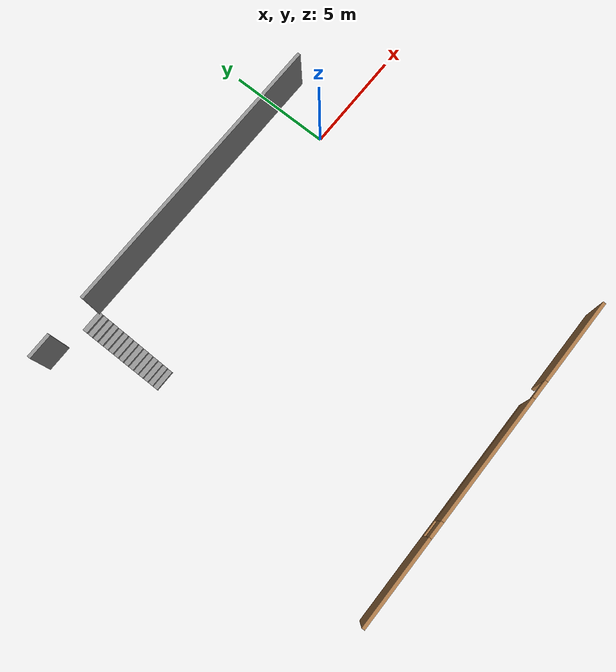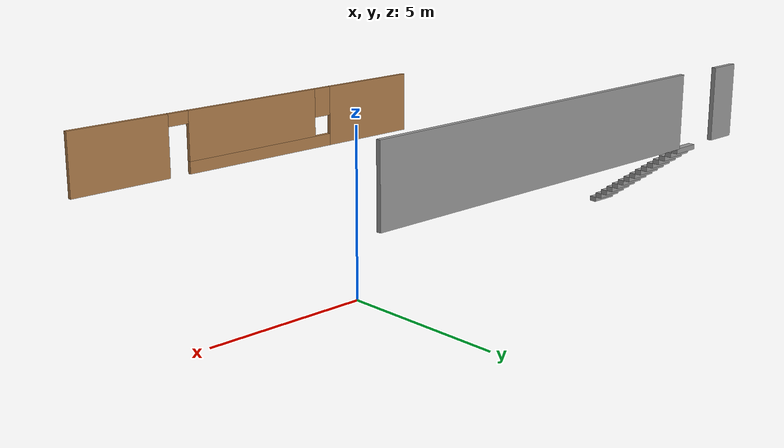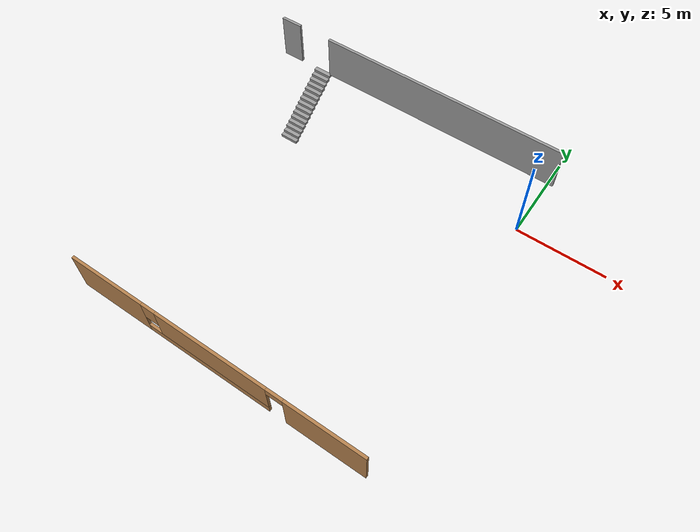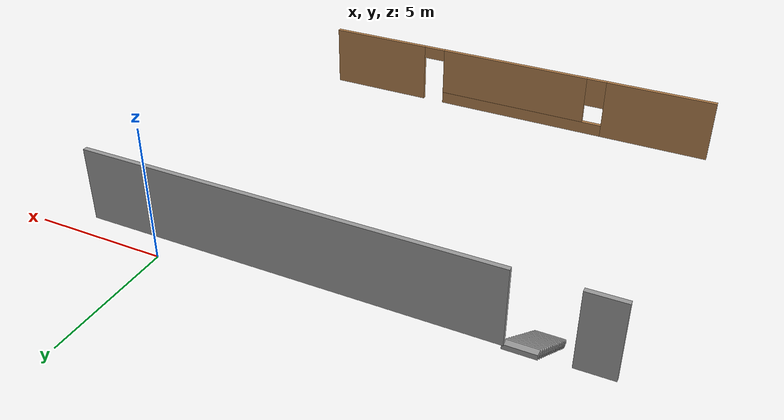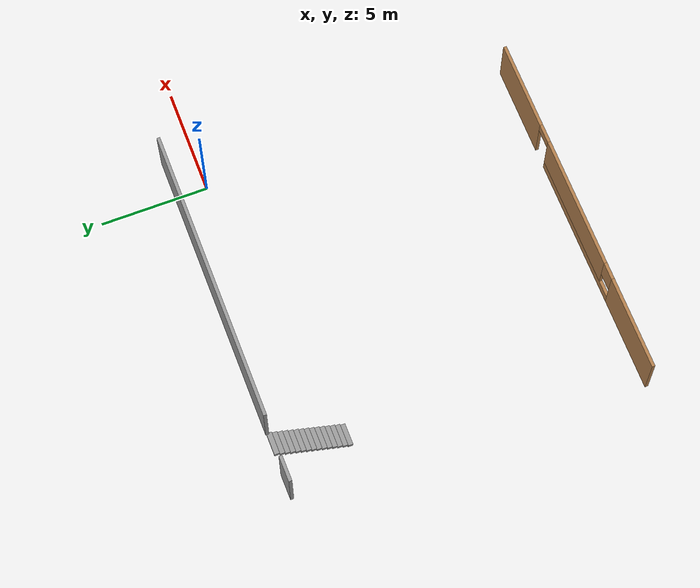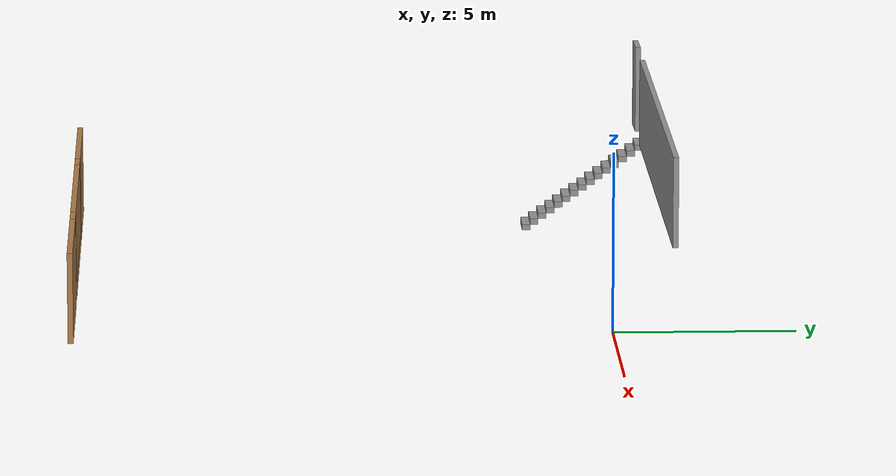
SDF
<sdf version="1.7">
 <model name="Floor_Plan_RS1">
  <pose>-35.0156 -19.3457 0 0 -0 0</pose>
  <link name="Stairs_2">
   <visual name="Stairs_2_Visual_0">
    <pose>21.7763 17.6235 0.083333 0 -0 -3.14159</pose>
    <geometry><box><size>1 0.233333 0.166667</size></box></geometry>
    <material>
     <script><uri>file://media/materials/scripts/gazebo.material</uri><name>Gazebo/Grey</name></script>
     <ambient>1 1 1 1</ambient>
    </material>
    <meta><layer>0</layer></meta>
   </visual>
   <collision name="Stairs_2_Collision_0">
    <geometry><box><size>1 0.233333 0.166667</size></box></geometry>
    <pose>21.7763 17.6235 0.083333 0 -0 -3.14159</pose>
   </collision>
   <visual name="Stairs_2_Visual_1">
    <pose>21.7763 17.8569 0.25 0 -0 -3.14159</pose>
    <geometry><box><size>1 0.233333 0.166667</size></box></geometry>
    <material>
     <script><uri>file://media/materials/scripts/gazebo.material</uri><name>Gazebo/Grey</name></script>
     <ambient>1 1 1 1</ambient>
    </material>
    <meta><layer>0</layer></meta>
   </visual>
   <collision name="Stairs_2_Collision_1">
    <geometry><box><size>1 0.233333 0.166667</size></box></geometry>
    <pose>21.7763 17.8569 0.25 0 -0 -3.14159</pose>
   </collision>
   <visual name="Stairs_2_Visual_2">
    <pose>21.7763 18.0902 0.416667 0 -0 -3.14159</pose>
    <geometry><box><size>1 0.233333 0.166667</size></box></geometry>
    <material>
     <script><uri>file://media/materials/scripts/gazebo.material</uri><name>Gazebo/Grey</name></script>
     <ambient>1 1 1 1</ambient>
    </material>
    <meta><layer>0</layer></meta>
   </visual>
   <collision name="Stairs_2_Collision_2">
    <geometry><box><size>1 0.233333 0.166667</size></box></geometry>
    <pose>21.7763 18.0902 0.416667 0 -0 -3.14159</pose>
   </collision>
   <visual name="Stairs_2_Visual_3">
    <pose>21.7763 18.3235 0.583333 0 -0 -3.14159</pose>
    <geometry><box><size>1 0.233333 0.166667</size></box></geometry>
    <material>
     <script><uri>file://media/materials/scripts/gazebo.material</uri><name>Gazebo/Grey</name></script>
     <ambient>1 1 1 1</ambient>
    </material>
    <meta><layer>0</layer></meta>
   </visual>
   <collision name="Stairs_2_Collision_3">
    <geometry><box><size>1 0.233333 0.166667</size></box></geometry>
    <pose>21.7763 18.3235 0.583333 0 -0 -3.14159</pose>
   </collision>
   <visual name="Stairs_2_Visual_4">
    <pose>21.7763 18.5569 0.75 0 -0 -3.14159</pose>
    <geometry><box><size>1 0.233333 0.166667</size></box></geometry>
    <material>
     <script><uri>file://media/materials/scripts/gazebo.material</uri><name>Gazebo/Grey</name></script>
     <ambient>1 1 1 1</ambient>
    </material>
    <meta><layer>0</layer></meta>
   </visual>
   <collision name="Stairs_2_Collision_4">
    <geometry><box><size>1 0.233333 0.166667</size></box></geometry>
    <pose>21.7763 18.5569 0.75 0 -0 -3.14159</pose>
   </collision>
   <visual name="Stairs_2_Visual_5">
    <pose>21.7763 18.7902 0.916667 0 -0 -3.14159</pose>
    <geometry><box><size>1 0.233333 0.166667</size></box></geometry>
    <material>
     <script><uri>file://media/materials/scripts/gazebo.material</uri><name>Gazebo/Grey</name></script>
     <ambient>1 1 1 1</ambient>
    </material>
    <meta><layer>0</layer></meta>
   </visual>
   <collision name="Stairs_2_Collision_5">
    <geometry><box><size>1 0.233333 0.166667</size></box></geometry>
    <pose>21.7763 18.7902 0.916667 0 -0 -3.14159</pose>
   </collision>
   <visual name="Stairs_2_Visual_6">
    <pose>21.7763 19.0235 1.08333 0 -0 -3.14159</pose>
    <geometry><box><size>1 0.233333 0.166667</size></box></geometry>
    <material>
     <script><uri>file://media/materials/scripts/gazebo.material</uri><name>Gazebo/Grey</name></script>
     <ambient>1 1 1 1</ambient>
    </material>
    <meta><layer>0</layer></meta>
   </visual>
   <collision name="Stairs_2_Collision_6">
    <geometry><box><size>1 0.233333 0.166667</size></box></geometry>
    <pose>21.7763 19.0235 1.08333 0 -0 -3.14159</pose>
   </collision>
   <visual name="Stairs_2_Visual_7">
    <pose>21.7763 19.2569 1.25 0 -0 -3.14159</pose>
    <geometry><box><size>1 0.233333 0.166667</size></box></geometry>
    <material>
     <script><uri>file://media/materials/scripts/gazebo.material</uri><name>Gazebo/Grey</name></script>
     <ambient>1 1 1 1</ambient>
    </material>
    <meta><layer>0</layer></meta>
   </visual>
   <collision name="Stairs_2_Collision_7">
    <geometry><box><size>1 0.233333 0.166667</size></box></geometry>
    <pose>21.7763 19.2569 1.25 0 -0 -3.14159</pose>
   </collision>
   <visual name="Stairs_2_Visual_8">
    <pose>21.7763 19.4902 1.41667 0 -0 -3.14159</pose>
    <geometry><box><size>1 0.233333 0.166667</size></box></geometry>
    <material>
     <script><uri>file://media/materials/scripts/gazebo.material</uri><name>Gazebo/Grey</name></script>
     <ambient>1 1 1 1</ambient>
    </material>
    <meta><layer>0</layer></meta>
   </visual>
   <collision name="Stairs_2_Collision_8">
    <geometry><box><size>1 0.233333 0.166667</size></box></geometry>
    <pose>21.7763 19.4902 1.41667 0 -0 -3.14159</pose>
   </collision>
   <visual name="Stairs_2_Visual_9">
    <pose>21.7763 19.7235 1.58333 0 -0 -3.14159</pose>
    <geometry><box><size>1 0.233333 0.166667</size></box></geometry>
    <material>
     <script><uri>file://media/materials/scripts/gazebo.material</uri><name>Gazebo/Grey</name></script>
     <ambient>1 1 1 1</ambient>
    </material>
    <meta><layer>0</layer></meta>
   </visual>
   <collision name="Stairs_2_Collision_9">
    <geometry><box><size>1 0.233333 0.166667</size></box></geometry>
    <pose>21.7763 19.7235 1.58333 0 -0 -3.14159</pose>
   </collision>
   <visual name="Stairs_2_Visual_10">
    <pose>21.7763 19.9569 1.75 0 -0 -3.14159</pose>
    <geometry><box><size>1 0.233333 0.166667</size></box></geometry>
    <material>
     <script><uri>file://media/materials/scripts/gazebo.material</uri><name>Gazebo/Grey</name></script>
     <ambient>1 1 1 1</ambient>
    </material>
    <meta><layer>0</layer></meta>
   </visual>
   <collision name="Stairs_2_Collision_10">
    <geometry><box><size>1 0.233333 0.166667</size></box></geometry>
    <pose>21.7763 19.9569 1.75 0 -0 -3.14159</pose>
   </collision>
   <visual name="Stairs_2_Visual_11">
    <pose>21.7763 20.1902 1.91667 0 -0 -3.14159</pose>
    <geometry><box><size>1 0.233333 0.166667</size></box></geometry>
    <material>
     <script><uri>file://media/materials/scripts/gazebo.material</uri><name>Gazebo/Grey</name></script>
     <ambient>1 1 1 1</ambient>
    </material>
    <meta><layer>0</layer></meta>
   </visual>
   <collision name="Stairs_2_Collision_11">
    <geometry><box><size>1 0.233333 0.166667</size></box></geometry>
    <pose>21.7763 20.1902 1.91667 0 -0 -3.14159</pose>
   </collision>
   <visual name="Stairs_2_Visual_12">
    <pose>21.7763 20.4235 2.08333 0 -0 -3.14159</pose>
    <geometry><box><size>1 0.233333 0.166667</size></box></geometry>
    <material>
     <script><uri>file://media/materials/scripts/gazebo.material</uri><name>Gazebo/Grey</name></script>
     <ambient>1 1 1 1</ambient>
    </material>
    <meta><layer>0</layer></meta>
   </visual>
   <collision name="Stairs_2_Collision_12">
    <geometry><box><size>1 0.233333 0.166667</size></box></geometry>
    <pose>21.7763 20.4235 2.08333 0 -0 -3.14159</pose>
   </collision>
   <visual name="Stairs_2_Visual_13">
    <pose>21.7763 20.6569 2.25 0 -0 -3.14159</pose>
    <geometry><box><size>1 0.233333 0.166667</size></box></geometry>
    <material>
     <script><uri>file://media/materials/scripts/gazebo.material</uri><name>Gazebo/Grey</name></script>
     <ambient>1 1 1 1</ambient>
    </material>
    <meta><layer>0</layer></meta>
   </visual>
   <collision name="Stairs_2_Collision_13">
    <geometry><box><size>1 0.233333 0.166667</size></box></geometry>
    <pose>21.7763 20.6569 2.25 0 -0 -3.14159</pose>
   </collision>
   <visual name="Stairs_2_Visual_14">
    <pose>21.7763 20.8902 2.41667 0 -0 -3.14159</pose>
    <geometry><box><size>1 0.233333 0.166667</size></box></geometry>
    <material>
     <script><uri>file://media/materials/scripts/gazebo.material</uri><name>Gazebo/Grey</name></script>
     <ambient>1 1 1 1</ambient>
    </material>
    <meta><layer>0</layer></meta>
   </visual>
   <collision name="Stairs_2_Collision_14">
    <geometry><box><size>1 0.233333 0.166667</size></box></geometry>
    <pose>21.7763 20.8902 2.41667 0 -0 -3.14159</pose>
   </collision>
  </link>
  <link name="Wall_12">
   <pose>27.477 4.64444 0 0 -0 0</pose>
   <visual name="Wall_12_Visual_0">
    <pose>-6.09438 0 1.25 0 -0 0</pose>
    <geometry><box><size>4.31125 0.15 2.5</size></box></geometry>
    <material>
     <script><uri>file://media/materials/scripts/gazebo.material</uri><name>Gazebo/Wood</name></script>
     <ambient>1 1 1 1</ambient>
    </material>
    <meta><layer>0</layer></meta>
   </visual>
   <collision name="Wall_12_Collision_0">
    <geometry><box><size>4.31125 0.15 2.5</size></box></geometry>
    <pose>-6.09438 0 1.25 0 -0 0</pose>
   </collision>
   <visual name="Wall_12_Visual_1">
    <pose>6.13057 0 1.25 0 -0 0</pose>
    <geometry><box><size>4.23885 0.15 2.5</size></box></geometry>
    <material>
     <script><uri>file://media/materials/scripts/gazebo.material</uri><name>Gazebo/Wood</name></script>
     <ambient>1 1 1 1</ambient>
    </material>
    <meta><layer>0</layer></meta>
   </visual>
   <collision name="Wall_12_Collision_1">
    <geometry><box><size>4.23885 0.15 2.5</size></box></geometry>
    <pose>6.13057 0 1.25 0 -0 0</pose>
   </collision>
   <visual name="Wall_12_Visual_2">
    <pose>-0.413804 0 0.25 0 -0 0</pose>
    <geometry><box><size>7.0499 0.15 0.5</size></box></geometry>
    <material>
     <script><uri>file://media/materials/scripts/gazebo.material</uri><name>Gazebo/Wood</name></script>
     <ambient>1 1 1 1</ambient>
    </material>
    <meta><layer>0</layer></meta>
   </visual>
   <collision name="Wall_12_Collision_2">
    <geometry><box><size>7.0499 0.15 0.5</size></box></geometry>
    <pose>-0.413804 0 0.25 0 -0 0</pose>
   </collision>
   <visual name="Wall_12_Visual_3">
    <pose>-0.013804 0 1.5 0 -0 0</pose>
    <geometry><box><size>6.2499 0.15 2</size></box></geometry>
    <material>
     <script><uri>file://media/materials/scripts/gazebo.material</uri><name>Gazebo/Wood</name></script>
     <ambient>1 1 1 1</ambient>
    </material>
    <meta><layer>0</layer></meta>
   </visual>
   <collision name="Wall_12_Collision_3">
    <geometry><box><size>6.2499 0.15 2</size></box></geometry>
    <pose>-0.013804 0 1.5 0 -0 0</pose>
   </collision>
   <visual name="Wall_12_Visual_4">
    <pose>-3.53875 0 1.9 0 -0 0</pose>
    <geometry><box><size>0.8 0.15 1.2</size></box></geometry>
    <material>
     <script><uri>file://media/materials/scripts/gazebo.material</uri><name>Gazebo/Wood</name></script>
     <ambient>1 1 1 1</ambient>
    </material>
    <meta><layer>0</layer></meta>
   </visual>
   <collision name="Wall_12_Collision_4">
    <geometry><box><size>0.8 0.15 1.2</size></box></geometry>
    <pose>-3.53875 0 1.9 0 -0 0</pose>
   </collision>
   <visual name="Wall_12_Visual_5">
    <pose>3.56115 0 2.25 0 -0 0</pose>
    <geometry><box><size>0.9 0.15 0.5</size></box></geometry>
    <material>
     <script><uri>file://media/materials/scripts/gazebo.material</uri><name>Gazebo/Wood</name></script>
     <ambient>1 1 1 1</ambient>
    </material>
    <meta><layer>0</layer></meta>
   </visual>
   <collision name="Wall_12_Collision_5">
    <geometry><box><size>0.9 0.15 0.5</size></box></geometry>
    <pose>3.56115 0 2.25 0 -0 0</pose>
   </collision>
  </link>
  <link name="Wall_25">
   <collision name="Wall_25_Collision">
    <geometry><box><size>1.15278 0.15 2.5</size></box></geometry>
    <pose>0 0 1.25 0 -0 0</pose>
   </collision>
   <visual name="Wall_25_Visual">
    <pose>0 0 1.25 0 -0 0</pose>
    <geometry><box><size>1.15278 0.15 2.5</size></box></geometry>
    <material>
     <script><uri>file://media/materials/scripts/gazebo.material</uri><name>Gazebo/Grey</name></script>
     <ambient>1 1 1 1</ambient>
    </material>
    <meta><layer>1</layer></meta>
   </visual>
   <pose>19.7876 20.9816 2.5 0 -0 0.005875</pose>
  </link>
  <link name="Wall_27">
   <collision name="Wall_27_Collision">
    <geometry><box><size>13.5 0.15 2.5</size></box></geometry>
    <pose>0 0 1.25 0 -0 0</pose>
   </collision>
   <visual name="Wall_27_Visual">
    <pose>0 0 1.25 0 -0 0</pose>
    <geometry><box><size>13.5 0.15 2.5</size></box></geometry>
    <material>
     <script><uri>file://media/materials/scripts/gazebo.material</uri><name>Gazebo/Grey</name></script>
     <ambient>1 1 1 1</ambient>
    </material>
    <meta><layer>1</layer></meta>
   </visual>
   <pose>28.9612 20.9786 2.5 0 -0 3.14159</pose>
  </link>
  <static>1</static>
 </model>
</sdf>
